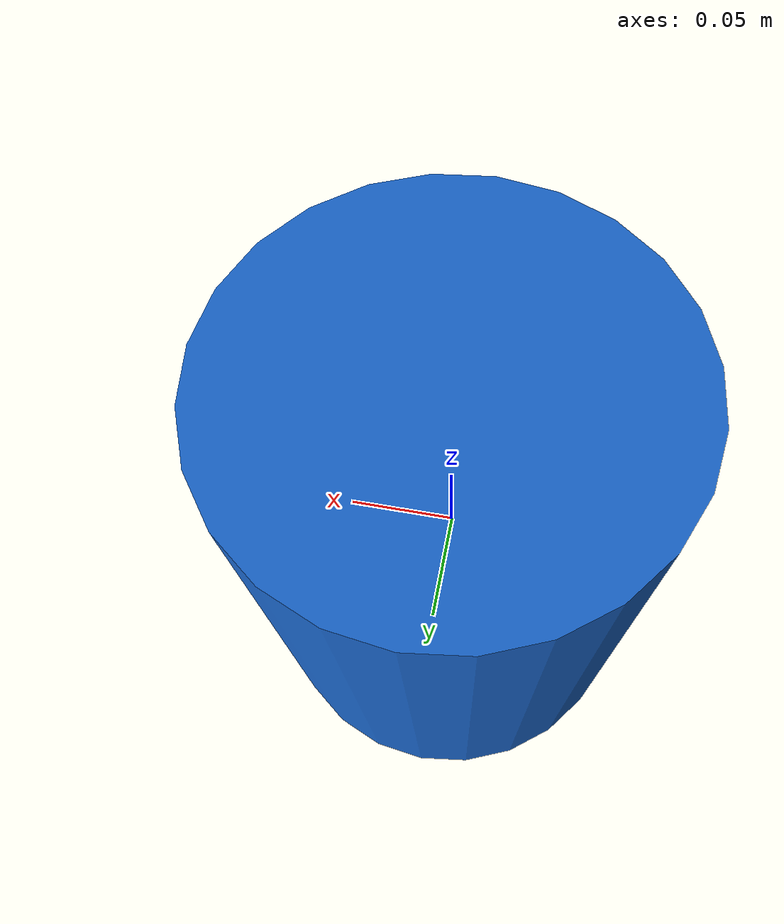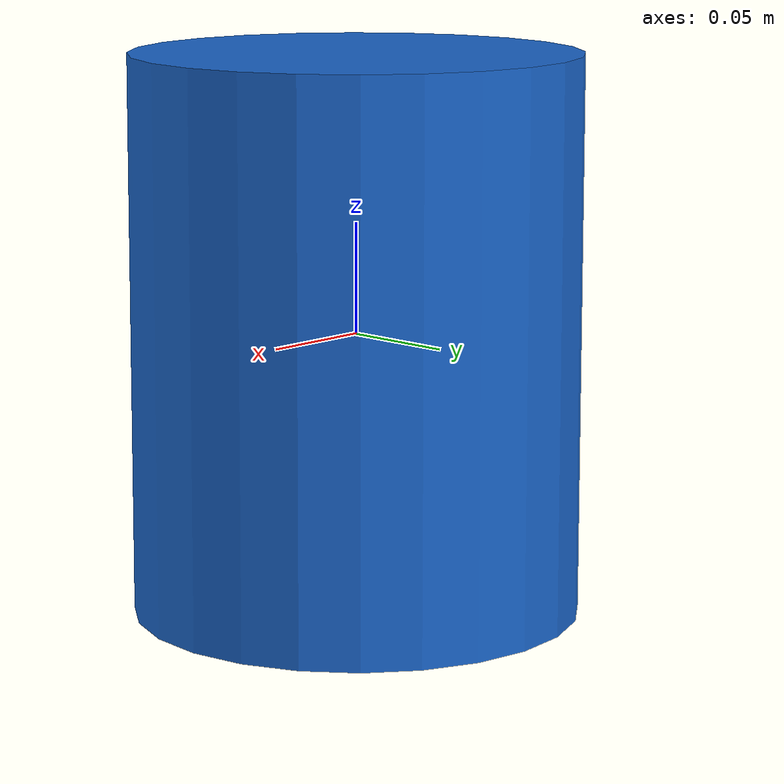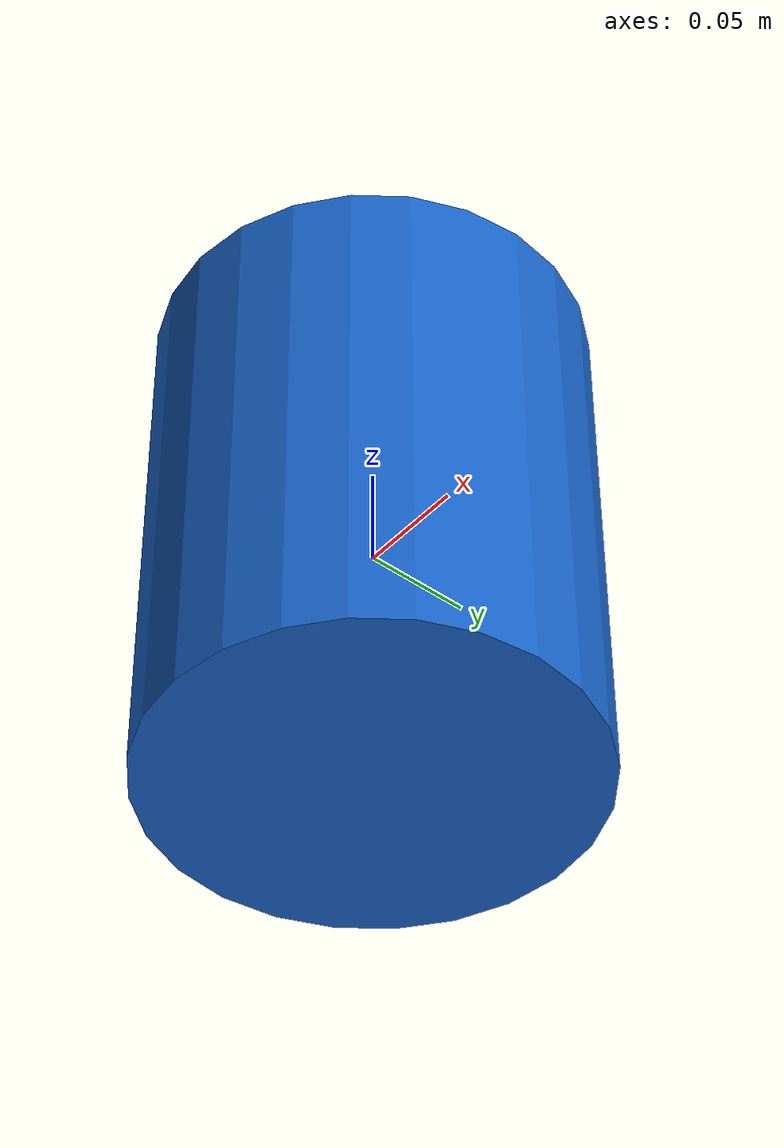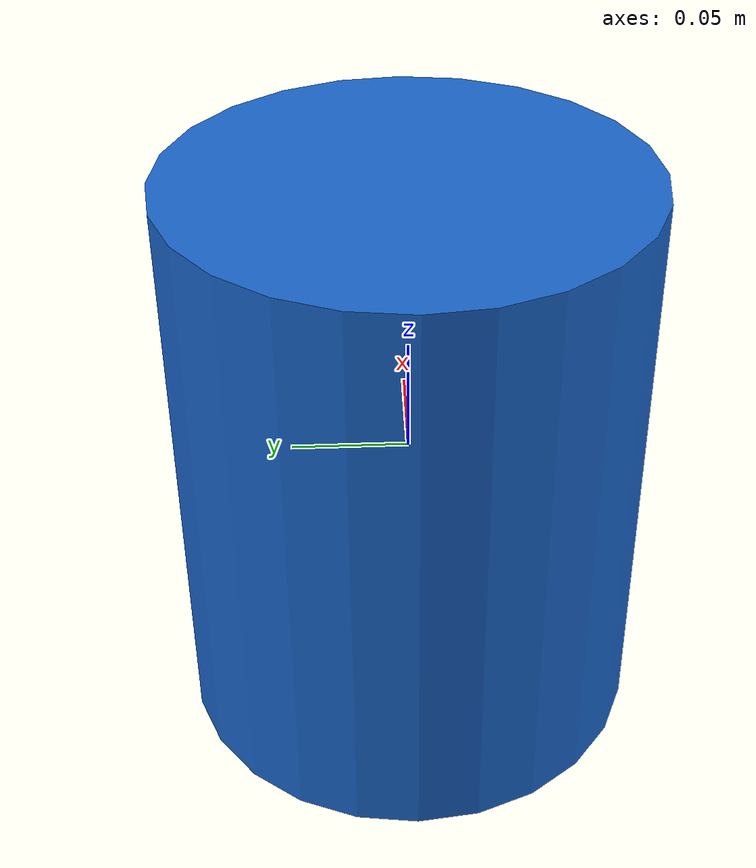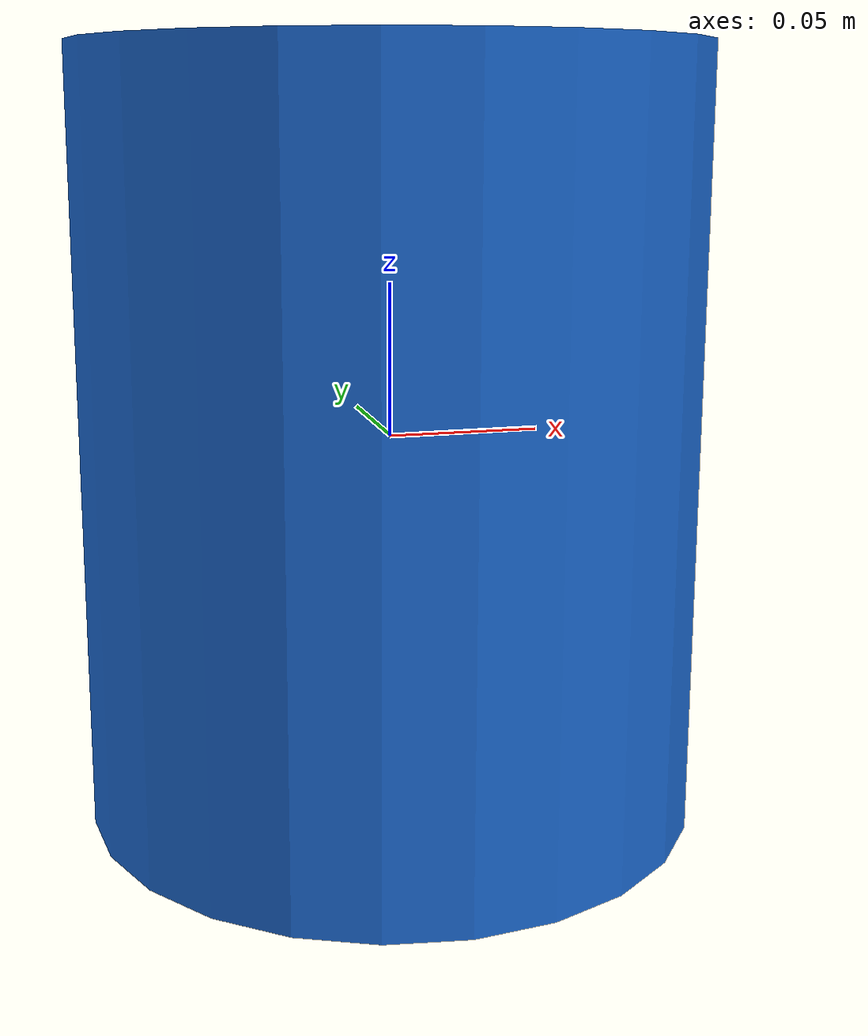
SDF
<?xml version="1.0" ?>
<sdf version="1.6">
  <model name="cylinder">
    <static>false</static>
    <link name="link">
      <inertial>
        <mass>10.0</mass>
      </inertial>
      <visual name="visual">
        <geometry>
          <cylinder>
            <radius>0.1</radius>
            <length>0.25</length>
          </cylinder>
        </geometry>
        <material>
          <ambient>0.1 0.4 0.8 1</ambient>
          <diffuse>0.1 0.4 0.8 1</diffuse>
          <specular>0.5 0.5 0.5 1</specular>
        </material>
      </visual>
      <collision name="collision">
        <geometry>
          <cylinder>
            <radius>0.1</radius>
            <length>0.25</length>
          </cylinder>
        </geometry>
      </collision>
    </link>
  </model>
</sdf>
